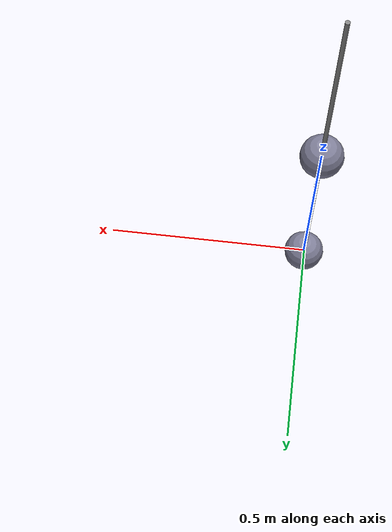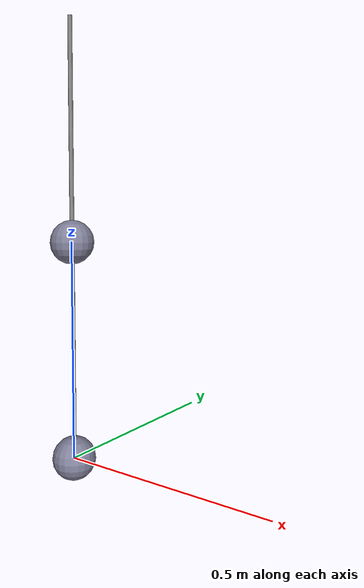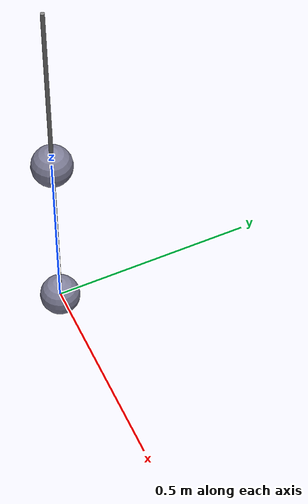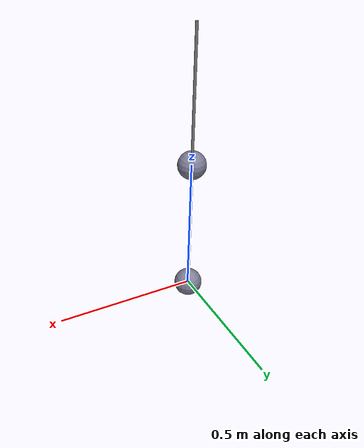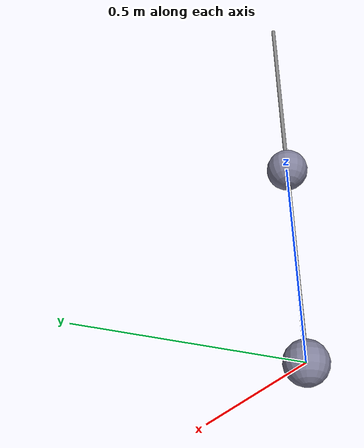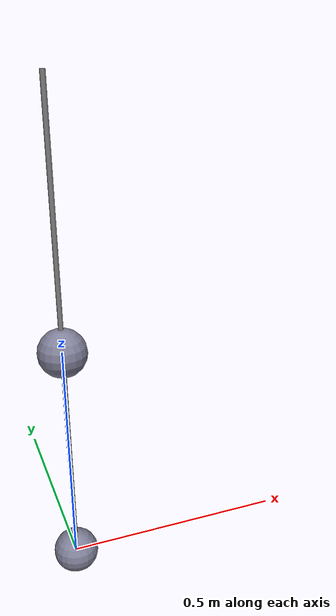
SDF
<?xml version="1.0"?>
<sdf version="1.6">

  <!-- Pendulum object -->

  <model name='pendulum' canonical_link='string'>
    <pose relative_to='world'>0.0 0.0 1.0 0.0 0.0 0.0</pose>

    <link name='string0'>
      <pose relative_to='__model__'>0.0 0.0 -0.25 0.0 0.0 0.0</pose>

      <inertial>
        <mass>0.1</mass>
        <inertia>
          <ixx>0.002084</ixx>
          <ixy>0</ixy>
          <ixz>0</ixz>
          <iyy>0.002084</iyy>
          <iyz>0</iyz>
          <izz>0.000001</izz>
        </inertia>
      </inertial>

      <visual name='visual'>
        <geometry>
          <cylinder>
            <radius>0.005</radius>
            <length>0.5</length>
          </cylinder>
        </geometry>
        <material>
          <ambient>0.5 0.5 0.5 1</ambient>
          <diffuse>0.5 0.5 0.5 1</diffuse>
          <specular>0.5 0.5 0.5 1</specular>
        </material>
      </visual>

      <!-- no collision -->

    </link>

    <link name='weight0'>
      <pose relative_to='string0'>0.0 0.0 -0.25 0.0 0.0 0.0</pose>

      <inertial>
        <mass>1.0</mass>
        <inertia>
          <ixx>0.001000</ixx>
          <ixy>0</ixy>
          <ixz>0</ixz>
          <iyy>0.001000</iyy>
          <iyz>0</iyz>
          <izz>0.001000</izz>
        </inertia>
      </inertial>

      <visual name='visual'>
        <geometry>
          <sphere>
            <radius>0.05</radius>
          </sphere>
        </geometry>
        <material>
          <ambient>0.5 0.5 0.5 1</ambient>
          <diffuse>0.5 0.5 0.6 1</diffuse>
          <specular>0.5 0.5 1.0 1</specular>
        </material>
      </visual>

      <collision name='collision'>
        <geometry>
          <sphere>
            <radius>0.05</radius>
          </sphere>
        </geometry>
        <surface>
          <bounce>
            <restitution_coefficient> 1.0 </restitution_coefficient>
          </bounce>
        </surface>
      </collision>

    </link>

    <link name='string1'>
      <pose relative_to='weight0'>0.0 0.0 -0.25 0.0 0.0 0.0</pose>

      <inertial>
        <mass>0.1</mass>
        <inertia>
          <ixx>0.002084</ixx>
          <ixy>0</ixy>
          <ixz>0</ixz>
          <iyy>0.002084</iyy>
          <iyz>0</iyz>
          <izz>0.000001</izz>
        </inertia>
      </inertial>

      <visual name='visual'>
        <geometry>
          <cylinder>
            <radius>0.005</radius>
            <length>0.5</length>
          </cylinder>
        </geometry>
        <material>
          <ambient>0.5 0.5 0.5 1</ambient>
          <diffuse>0.5 0.5 0.5 1</diffuse>
          <specular>0.5 0.5 0.5 1</specular>
        </material>
      </visual>

      <!-- no collision -->

    </link>

    <link name='weight1'>
      <pose relative_to='string1'>0.0 0.0 -0.25 0.0 0.0 0.0</pose>

      <inertial>
        <mass>1.0</mass>
        <inertia>
          <ixx>0.001000</ixx>
          <ixy>0</ixy>
          <ixz>0</ixz>
          <iyy>0.001000</iyy>
          <iyz>0</iyz>
          <izz>0.001000</izz>
        </inertia>
      </inertial>

      <visual name='visual'>
        <geometry>
          <sphere>
            <radius>0.05</radius>
          </sphere>
        </geometry>
        <material>
          <ambient>0.5 0.5 0.5 1</ambient>
          <diffuse>0.5 0.5 0.6 1</diffuse>
          <specular>0.5 0.5 1.0 1</specular>
        </material>
      </visual>

      <collision name='collision'>
        <geometry>
          <sphere>
            <radius>0.05</radius>
          </sphere>
        </geometry>
        <surface>
          <bounce>
            <restitution_coefficient> 1.0 </restitution_coefficient>
          </bounce>
        </surface>
      </collision>

    </link>

    <joint name='world_string0' type='revolute'>
      <parent>world</parent>
      <child>string0</child>
      <pose>0.0 0.0 0.25 0.0 0.0 0.0</pose>
      <axis>
        <xyz>0 1 0</xyz>
      </axis>
    </joint>

    <joint name='string0_weight0' type='fixed'>
      <parent>string0</parent>
      <child>weight0</child>
      <pose>0.0 0.0 0.0 0.0 0.0 0.0</pose>
    </joint>

    <joint name='weight0_string1' type='revolute'>
      <parent>weight0</parent>
      <child>string1</child>
      <pose>0.0 0.0 0.25 0.0 0.0 0.0</pose>
      <axis>
        <xyz>0 1 0</xyz>
      </axis>
    </joint>

    <joint name='string1_weight1' type='fixed'>
      <parent>string1</parent>
      <child>weight1</child>
      <pose>0.0 0.0 0.0 0.0 0.0 0.0</pose>
    </joint>

  </model>

</sdf>
